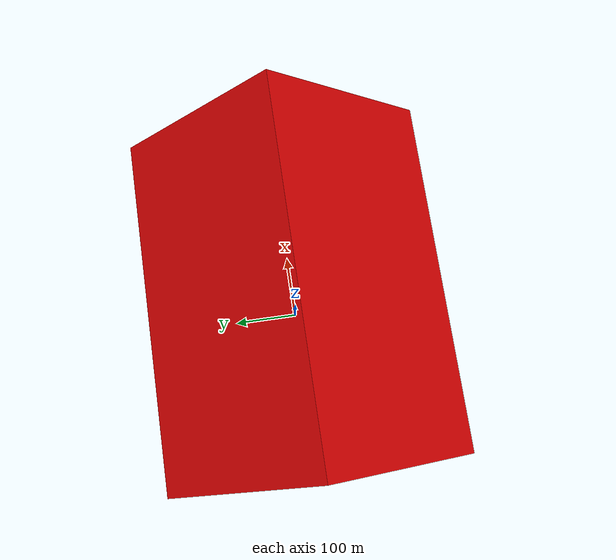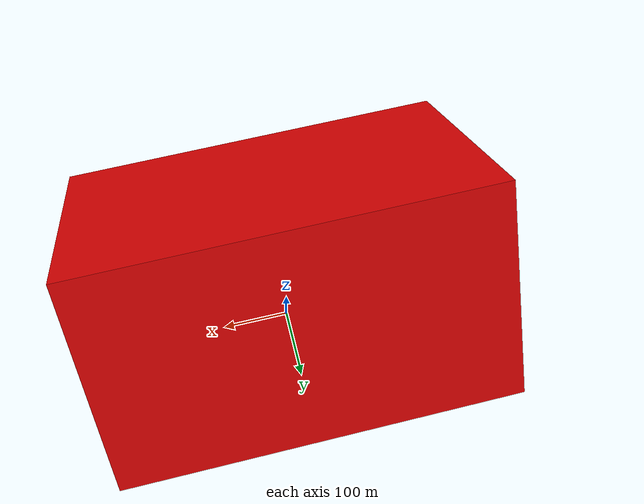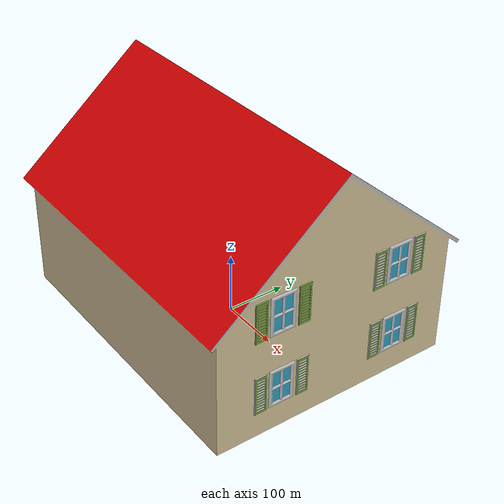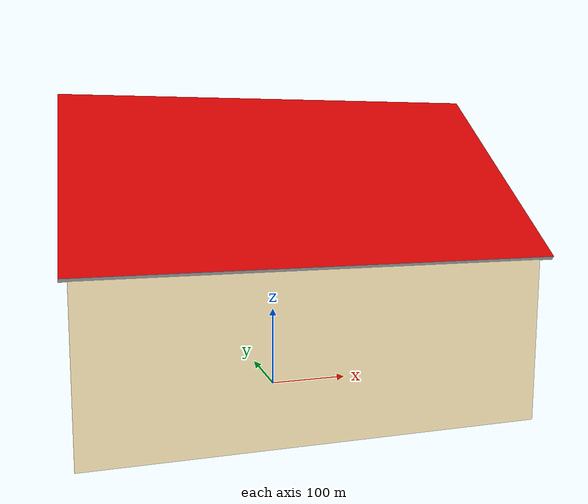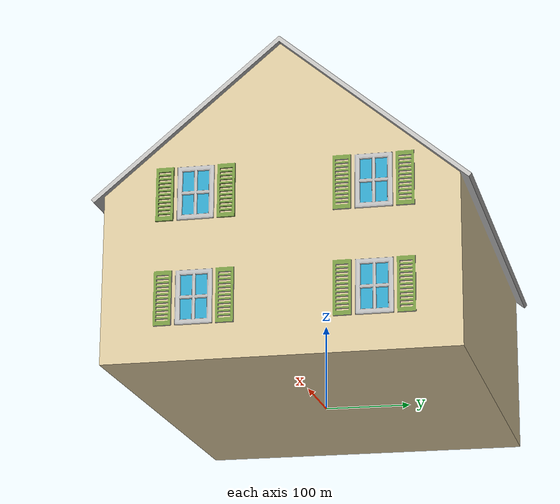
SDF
<?xml version="1.0" ?>
<sdf version="1.6">
  <model name="simple_box">
    <static>true</static>
    <link name="link">
      <visual name="visual">
        <geometry>
          <mesh>
            <uri>model://small_town/meshes/SmallHome.dae</uri>
          </mesh>
        </geometry>
      </visual>
    </link>
  </model>
</sdf>
